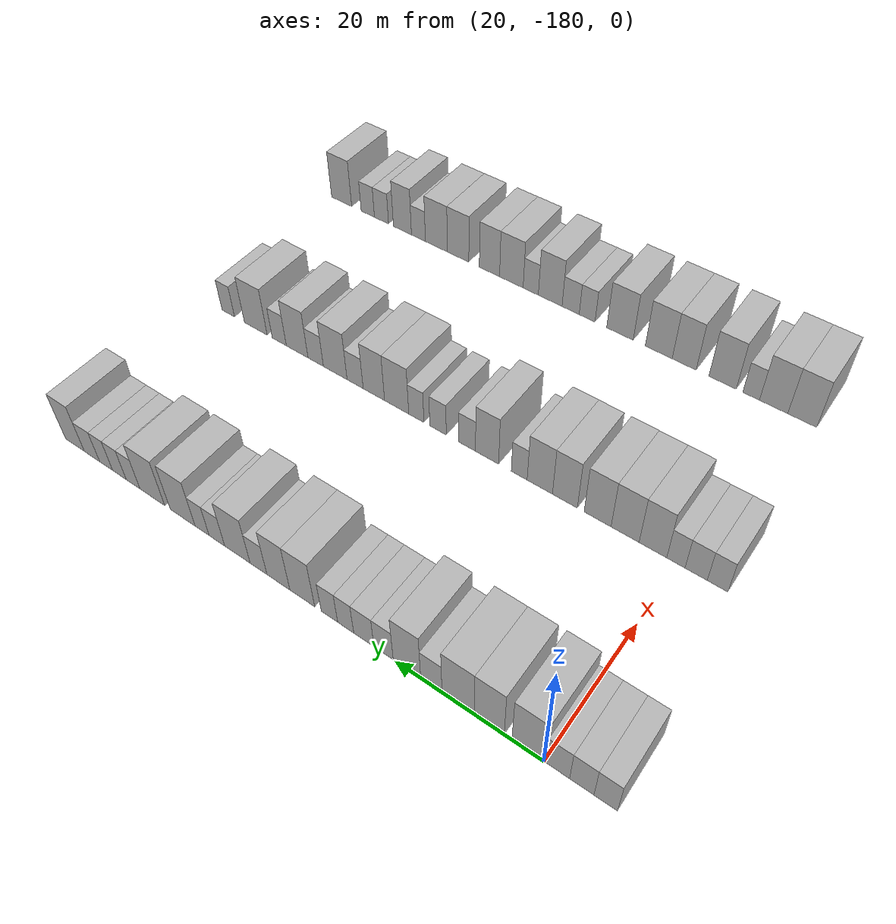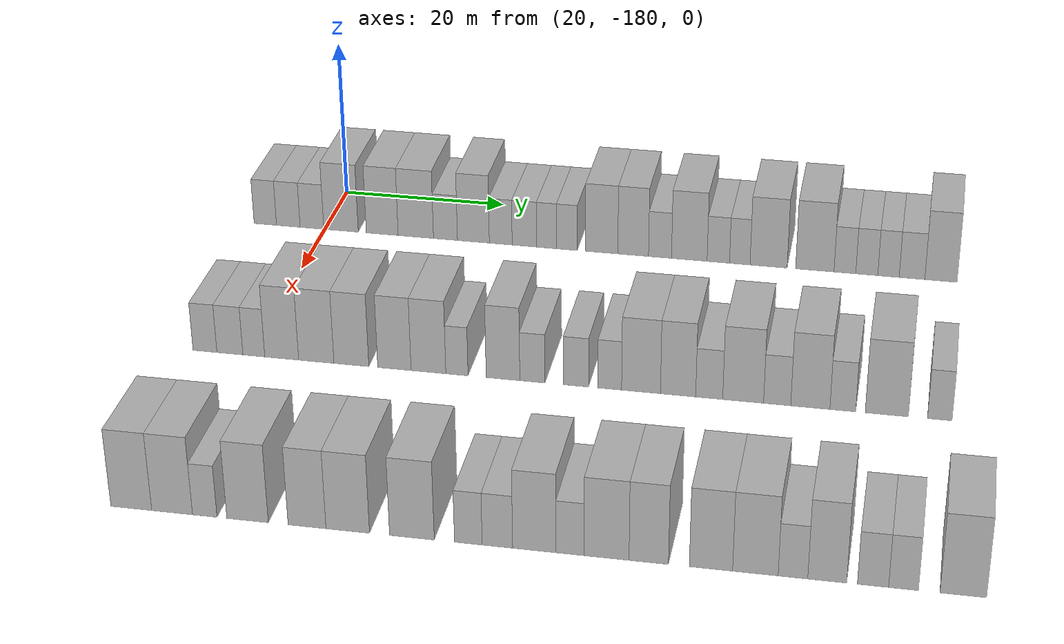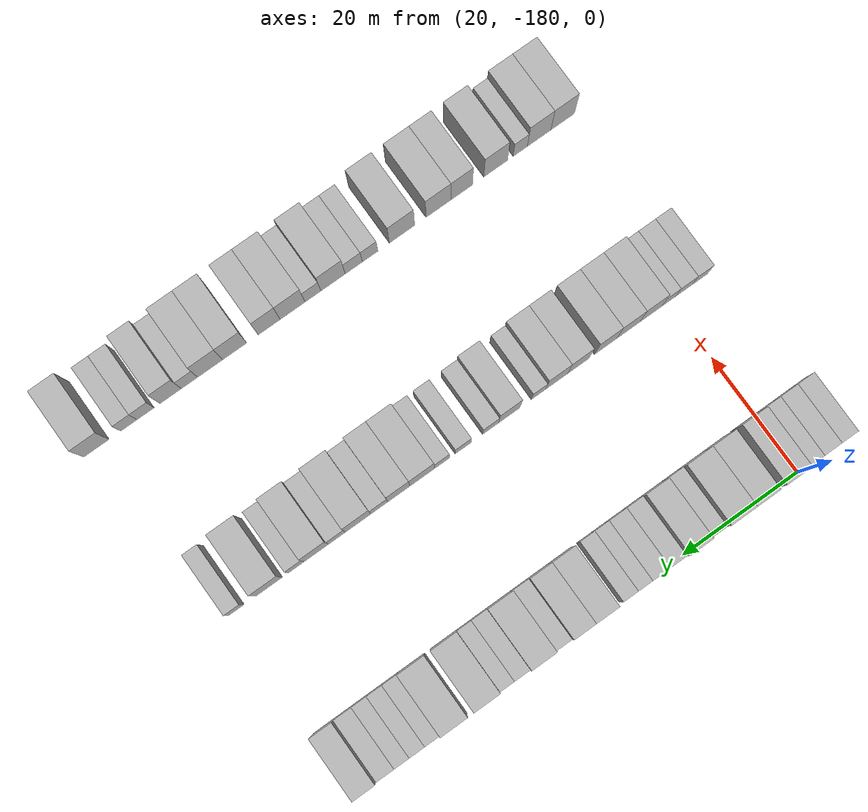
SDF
<sdf version="1.6">
 <world name="default">
  <model name="building_20">
   <static>1</static>
   <pose>25.0000 -187.5165 0 0.000000 0.000000 0.000000</pose>
   <link name="link">
    <pose>0 0 3.00 0 0 0</pose>
    <collision name="collision"><geometry><box><size>10.0000 2.8149 6.0000</size></box></geometry></collision>
    <visual name="visual">
     <cast_shadows>0</cast_shadows>
     <geometry><box><size>10.0000 2.8149 6.0000</size></box></geometry>
     <material>
      <script>
       <uri>model://HANNAS_wall/materials/scripts</uri>
       <uri>model://HANNAS_wall/materials/textures</uri>
       <name>vrc/HANNAS_wall</name>
      </script>
     </material>
    </visual>
   </link>
  </model>
  <model name="building_21">
   <static>1</static>
   <pose>25.0000 -184.6260 0 0.000000 0.000000 0.000000</pose>
   <link name="link">
    <pose>0 0 3.00 0 0 0</pose>
    <collision name="collision"><geometry><box><size>10.0000 2.9661 6.0000</size></box></geometry></collision>
    <visual name="visual">
     <cast_shadows>0</cast_shadows>
     <geometry><box><size>10.0000 2.9661 6.0000</size></box></geometry>
     <material>
      <script>
       <uri>model://HANNAS_wall/materials/scripts</uri>
       <uri>model://HANNAS_wall/materials/textures</uri>
       <name>vrc/HANNAS_wall</name>
      </script>
     </material>
    </visual>
   </link>
  </model>
  <model name="building_22">
   <static>1</static>
   <pose>25.0000 -181.6571 0 0.000000 0.000000 0.000000</pose>
   <link name="link">
    <pose>0 0 3.00 0 0 0</pose>
    <collision name="collision"><geometry><box><size>10.0000 2.9718 6.0000</size></box></geometry></collision>
    <visual name="visual">
     <cast_shadows>0</cast_shadows>
     <geometry><box><size>10.0000 2.9718 6.0000</size></box></geometry>
     <material>
      <script>
       <uri>model://HANNAS_wall/materials/scripts</uri>
       <uri>model://HANNAS_wall/materials/textures</uri>
       <name>vrc/HANNAS_wall</name>
      </script>
     </material>
    </visual>
   </link>
  </model>
  <model name="building_23">
   <static>1</static>
   <pose>25.0000 -178.0207 0 0.000000 0.000000 0.000000</pose>
   <link name="link">
    <pose>0 0 4.50 0 0 0</pose>
    <collision name="collision"><geometry><box><size>10.0000 4.3011 9.0000</size></box></geometry></collision>
    <visual name="visual">
     <cast_shadows>0</cast_shadows>
     <geometry><box><size>10.0000 4.3011 9.0000</size></box></geometry>
     <material>
      <script>
       <uri>model://HANNAS_wall/materials/scripts</uri>
       <uri>model://HANNAS_wall/materials/textures</uri>
       <name>vrc/HANNAS_wall</name>
      </script>
     </material>
    </visual>
   </link>
  </model>
  <model name="building_24">
   <static>1</static>
   <pose>25.0000 -172.8933 0 0.000000 0.000000 0.000000</pose>
   <link name="link">
    <pose>0 0 4.50 0 0 0</pose>
    <collision name="collision"><geometry><box><size>10.0000 3.9537 9.0000</size></box></geometry></collision>
    <visual name="visual">
     <cast_shadows>0</cast_shadows>
     <geometry><box><size>10.0000 3.9537 9.0000</size></box></geometry>
     <material>
      <script>
       <uri>model://HANNAS_wall/materials/scripts</uri>
       <uri>model://HANNAS_wall/materials/textures</uri>
       <name>vrc/HANNAS_wall</name>
      </script>
     </material>
    </visual>
   </link>
  </model>
  <model name="building_25">
   <static>1</static>
   <pose>25.0000 -168.7326 0 0.000000 0.000000 0.000000</pose>
   <link name="link">
    <pose>0 0 4.50 0 0 0</pose>
    <collision name="collision"><geometry><box><size>10.0000 4.3678 9.0000</size></box></geometry></collision>
    <visual name="visual">
     <cast_shadows>0</cast_shadows>
     <geometry><box><size>10.0000 4.3678 9.0000</size></box></geometry>
     <material>
      <script>
       <uri>model://HANNAS_wall/materials/scripts</uri>
       <uri>model://HANNAS_wall/materials/textures</uri>
       <name>vrc/HANNAS_wall</name>
      </script>
     </material>
    </visual>
   </link>
  </model>
  <model name="building_26">
   <static>1</static>
   <pose>25.0000 -165.0727 0 0.000000 0.000000 0.000000</pose>
   <link name="link">
    <pose>0 0 3.00 0 0 0</pose>
    <collision name="collision"><geometry><box><size>10.0000 2.9520 6.0000</size></box></geometry></collision>
    <visual name="visual">
     <cast_shadows>0</cast_shadows>
     <geometry><box><size>10.0000 2.9520 6.0000</size></box></geometry>
     <material>
      <script>
       <uri>model://HANNAS_wall/materials/scripts</uri>
       <uri>model://HANNAS_wall/materials/textures</uri>
       <name>vrc/HANNAS_wall</name>
      </script>
     </material>
    </visual>
   </link>
  </model>
  <model name="building_27">
   <static>1</static>
   <pose>25.0000 -161.6454 0 0.000000 0.000000 0.000000</pose>
   <link name="link">
    <pose>0 0 4.50 0 0 0</pose>
    <collision name="collision"><geometry><box><size>10.0000 3.9026 9.0000</size></box></geometry></collision>
    <visual name="visual">
     <cast_shadows>0</cast_shadows>
     <geometry><box><size>10.0000 3.9026 9.0000</size></box></geometry>
     <material>
      <script>
       <uri>model://HANNAS_wall/materials/scripts</uri>
       <uri>model://HANNAS_wall/materials/textures</uri>
       <name>vrc/HANNAS_wall</name>
      </script>
     </material>
    </visual>
   </link>
  </model>
  <model name="building_28">
   <static>1</static>
   <pose>25.0000 -158.3003 0 0.000000 0.000000 0.000000</pose>
   <link name="link">
    <pose>0 0 3.00 0 0 0</pose>
    <collision name="collision"><geometry><box><size>10.0000 2.7876 6.0000</size></box></geometry></collision>
    <visual name="visual">
     <cast_shadows>0</cast_shadows>
     <geometry><box><size>10.0000 2.7876 6.0000</size></box></geometry>
     <material>
      <script>
       <uri>model://HANNAS_wall/materials/scripts</uri>
       <uri>model://HANNAS_wall/materials/textures</uri>
       <name>vrc/HANNAS_wall</name>
      </script>
     </material>
    </visual>
   </link>
  </model>
  <model name="building_29">
   <static>1</static>
   <pose>25.0000 -155.4149 0 0.000000 0.000000 0.000000</pose>
   <link name="link">
    <pose>0 0 3.00 0 0 0</pose>
    <collision name="collision"><geometry><box><size>10.0000 2.9831 6.0000</size></box></geometry></collision>
    <visual name="visual">
     <cast_shadows>0</cast_shadows>
     <geometry><box><size>10.0000 2.9831 6.0000</size></box></geometry>
     <material>
      <script>
       <uri>model://HANNAS_wall/materials/scripts</uri>
       <uri>model://HANNAS_wall/materials/textures</uri>
       <name>vrc/HANNAS_wall</name>
      </script>
     </material>
    </visual>
   </link>
  </model>
  <model name="building_30">
   <static>1</static>
   <pose>25.0000 -152.7174 0 0.000000 0.000000 0.000000</pose>
   <link name="link">
    <pose>0 0 3.00 0 0 0</pose>
    <collision name="collision"><geometry><box><size>10.0000 2.4119 6.0000</size></box></geometry></collision>
    <visual name="visual">
     <cast_shadows>0</cast_shadows>
     <geometry><box><size>10.0000 2.4119 6.0000</size></box></geometry>
     <material>
      <script>
       <uri>model://HANNAS_wall/materials/scripts</uri>
       <uri>model://HANNAS_wall/materials/textures</uri>
       <name>vrc/HANNAS_wall</name>
      </script>
     </material>
    </visual>
   </link>
  </model>
  <model name="building_31">
   <static>1</static>
   <pose>25.0000 -150.2543 0 0.000000 0.000000 0.000000</pose>
   <link name="link">
    <pose>0 0 3.00 0 0 0</pose>
    <collision name="collision"><geometry><box><size>10.0000 2.5144 6.0000</size></box></geometry></collision>
    <visual name="visual">
     <cast_shadows>0</cast_shadows>
     <geometry><box><size>10.0000 2.5144 6.0000</size></box></geometry>
     <material>
      <script>
       <uri>model://HANNAS_wall/materials/scripts</uri>
       <uri>model://HANNAS_wall/materials/textures</uri>
       <name>vrc/HANNAS_wall</name>
      </script>
     </material>
    </visual>
   </link>
  </model>
  <model name="building_32">
   <static>1</static>
   <pose>25.0000 -146.0555 0 0.000000 0.000000 0.000000</pose>
   <link name="link">
    <pose>0 0 4.50 0 0 0</pose>
    <collision name="collision"><geometry><box><size>10.0000 3.8832 9.0000</size></box></geometry></collision>
    <visual name="visual">
     <cast_shadows>0</cast_shadows>
     <geometry><box><size>10.0000 3.8832 9.0000</size></box></geometry>
     <material>
      <script>
       <uri>model://HANNAS_wall/materials/scripts</uri>
       <uri>model://HANNAS_wall/materials/textures</uri>
       <name>vrc/HANNAS_wall</name>
      </script>
     </material>
    </visual>
   </link>
  </model>
  <model name="building_33">
   <static>1</static>
   <pose>25.0000 -142.2736 0 0.000000 0.000000 0.000000</pose>
   <link name="link">
    <pose>0 0 4.50 0 0 0</pose>
    <collision name="collision"><geometry><box><size>10.0000 3.6805 9.0000</size></box></geometry></collision>
    <visual name="visual">
     <cast_shadows>0</cast_shadows>
     <geometry><box><size>10.0000 3.6805 9.0000</size></box></geometry>
     <material>
      <script>
       <uri>model://HANNAS_wall/materials/scripts</uri>
       <uri>model://HANNAS_wall/materials/textures</uri>
       <name>vrc/HANNAS_wall</name>
      </script>
     </material>
    </visual>
   </link>
  </model>
  <model name="building_34">
   <static>1</static>
   <pose>25.0000 -139.0617 0 0.000000 0.000000 0.000000</pose>
   <link name="link">
    <pose>0 0 3.00 0 0 0</pose>
    <collision name="collision"><geometry><box><size>10.0000 2.7433 6.0000</size></box></geometry></collision>
    <visual name="visual">
     <cast_shadows>0</cast_shadows>
     <geometry><box><size>10.0000 2.7433 6.0000</size></box></geometry>
     <material>
      <script>
       <uri>model://HANNAS_wall/materials/scripts</uri>
       <uri>model://HANNAS_wall/materials/textures</uri>
       <name>vrc/HANNAS_wall</name>
      </script>
     </material>
    </visual>
   </link>
  </model>
  <model name="building_35">
   <static>1</static>
   <pose>25.0000 -135.5713 0 0.000000 0.000000 0.000000</pose>
   <link name="link">
    <pose>0 0 4.50 0 0 0</pose>
    <collision name="collision"><geometry><box><size>10.0000 4.2375 9.0000</size></box></geometry></collision>
    <visual name="visual">
     <cast_shadows>0</cast_shadows>
     <geometry><box><size>10.0000 4.2375 9.0000</size></box></geometry>
     <material>
      <script>
       <uri>model://HANNAS_wall/materials/scripts</uri>
       <uri>model://HANNAS_wall/materials/textures</uri>
       <name>vrc/HANNAS_wall</name>
      </script>
     </material>
    </visual>
   </link>
  </model>
  <model name="building_36">
   <static>1</static>
   <pose>25.0000 -132.1241 0 0.000000 0.000000 0.000000</pose>
   <link name="link">
    <pose>0 0 3.00 0 0 0</pose>
    <collision name="collision"><geometry><box><size>10.0000 2.6570 6.0000</size></box></geometry></collision>
    <visual name="visual">
     <cast_shadows>0</cast_shadows>
     <geometry><box><size>10.0000 2.6570 6.0000</size></box></geometry>
     <material>
      <script>
       <uri>model://HANNAS_wall/materials/scripts</uri>
       <uri>model://HANNAS_wall/materials/textures</uri>
       <name>vrc/HANNAS_wall</name>
      </script>
     </material>
    </visual>
   </link>
  </model>
  <model name="building_37">
   <static>1</static>
   <pose>25.0000 -129.5836 0 0.000000 0.000000 0.000000</pose>
   <link name="link">
    <pose>0 0 3.00 0 0 0</pose>
    <collision name="collision"><geometry><box><size>10.0000 2.4239 6.0000</size></box></geometry></collision>
    <visual name="visual">
     <cast_shadows>0</cast_shadows>
     <geometry><box><size>10.0000 2.4239 6.0000</size></box></geometry>
     <material>
      <script>
       <uri>model://HANNAS_wall/materials/scripts</uri>
       <uri>model://HANNAS_wall/materials/textures</uri>
       <name>vrc/HANNAS_wall</name>
      </script>
     </material>
    </visual>
   </link>
  </model>
  <model name="building_38">
   <static>1</static>
   <pose>25.0000 -126.1847 0 0.000000 0.000000 0.000000</pose>
   <link name="link">
    <pose>0 0 4.50 0 0 0</pose>
    <collision name="collision"><geometry><box><size>10.0000 4.3740 9.0000</size></box></geometry></collision>
    <visual name="visual">
     <cast_shadows>0</cast_shadows>
     <geometry><box><size>10.0000 4.3740 9.0000</size></box></geometry>
     <material>
      <script>
       <uri>model://HANNAS_wall/materials/scripts</uri>
       <uri>model://HANNAS_wall/materials/textures</uri>
       <name>vrc/HANNAS_wall</name>
      </script>
     </material>
    </visual>
   </link>
  </model>
  <model name="building_39">
   <static>1</static>
   <pose>25.0000 -120.7528 0 0.000000 0.000000 0.000000</pose>
   <link name="link">
    <pose>0 0 4.50 0 0 0</pose>
    <collision name="collision"><geometry><box><size>10.0000 4.4898 9.0000</size></box></geometry></collision>
    <visual name="visual">
     <cast_shadows>0</cast_shadows>
     <geometry><box><size>10.0000 4.4898 9.0000</size></box></geometry>
     <material>
      <script>
       <uri>model://HANNAS_wall/materials/scripts</uri>
       <uri>model://HANNAS_wall/materials/textures</uri>
       <name>vrc/HANNAS_wall</name>
      </script>
     </material>
    </visual>
   </link>
  </model>
  <model name="building_40">
   <static>1</static>
   <pose>25.0000 -117.2379 0 0.000000 0.000000 0.000000</pose>
   <link name="link">
    <pose>0 0 3.00 0 0 0</pose>
    <collision name="collision"><geometry><box><size>10.0000 2.5400 6.0000</size></box></geometry></collision>
    <visual name="visual">
     <cast_shadows>0</cast_shadows>
     <geometry><box><size>10.0000 2.5400 6.0000</size></box></geometry>
     <material>
      <script>
       <uri>model://HANNAS_wall/materials/scripts</uri>
       <uri>model://HANNAS_wall/materials/textures</uri>
       <name>vrc/HANNAS_wall</name>
      </script>
     </material>
    </visual>
   </link>
  </model>
  <model name="building_41">
   <static>1</static>
   <pose>25.0000 -114.6901 0 0.000000 0.000000 0.000000</pose>
   <link name="link">
    <pose>0 0 3.00 0 0 0</pose>
    <collision name="collision"><geometry><box><size>10.0000 2.5557 6.0000</size></box></geometry></collision>
    <visual name="visual">
     <cast_shadows>0</cast_shadows>
     <geometry><box><size>10.0000 2.5557 6.0000</size></box></geometry>
     <material>
      <script>
       <uri>model://HANNAS_wall/materials/scripts</uri>
       <uri>model://HANNAS_wall/materials/textures</uri>
       <name>vrc/HANNAS_wall</name>
      </script>
     </material>
    </visual>
   </link>
  </model>
  <model name="building_42">
   <static>1</static>
   <pose>25.0000 -112.1726 0 0.000000 0.000000 0.000000</pose>
   <link name="link">
    <pose>0 0 3.00 0 0 0</pose>
    <collision name="collision"><geometry><box><size>10.0000 2.4793 6.0000</size></box></geometry></collision>
    <visual name="visual">
     <cast_shadows>0</cast_shadows>
     <geometry><box><size>10.0000 2.4793 6.0000</size></box></geometry>
     <material>
      <script>
       <uri>model://HANNAS_wall/materials/scripts</uri>
       <uri>model://HANNAS_wall/materials/textures</uri>
       <name>vrc/HANNAS_wall</name>
      </script>
     </material>
    </visual>
   </link>
  </model>
  <model name="building_43">
   <static>1</static>
   <pose>25.0000 -109.4523 0 0.000000 0.000000 0.000000</pose>
   <link name="link">
    <pose>0 0 3.00 0 0 0</pose>
    <collision name="collision"><geometry><box><size>10.0000 2.9611 6.0000</size></box></geometry></collision>
    <visual name="visual">
     <cast_shadows>0</cast_shadows>
     <geometry><box><size>10.0000 2.9611 6.0000</size></box></geometry>
     <material>
      <script>
       <uri>model://HANNAS_wall/materials/scripts</uri>
       <uri>model://HANNAS_wall/materials/textures</uri>
       <name>vrc/HANNAS_wall</name>
      </script>
     </material>
    </visual>
   </link>
  </model>
  <model name="building_44">
   <static>1</static>
   <pose>25.0000 -106.1168 0 0.000000 0.000000 0.000000</pose>
   <link name="link">
    <pose>0 0 4.50 0 0 0</pose>
    <collision name="collision"><geometry><box><size>10.0000 3.7099 9.0000</size></box></geometry></collision>
    <visual name="visual">
     <cast_shadows>0</cast_shadows>
     <geometry><box><size>10.0000 3.7099 9.0000</size></box></geometry>
     <material>
      <script>
       <uri>model://HANNAS_wall/materials/scripts</uri>
       <uri>model://HANNAS_wall/materials/textures</uri>
       <name>vrc/HANNAS_wall</name>
      </script>
     </material>
    </visual>
   </link>
  </model>
  <model name="building_160">
   <static>1</static>
   <pose>55.0000 -185.3329 0 0.000000 0.000000 0.000000</pose>
   <link name="link">
    <pose>0 0 3.00 0 0 0</pose>
    <collision name="collision"><geometry><box><size>10.0000 2.7298 6.0000</size></box></geometry></collision>
    <visual name="visual">
     <cast_shadows>0</cast_shadows>
     <geometry><box><size>10.0000 2.7298 6.0000</size></box></geometry>
     <material>
      <script>
       <uri>model://HANNAS_wall/materials/scripts</uri>
       <uri>model://HANNAS_wall/materials/textures</uri>
       <name>vrc/HANNAS_wall</name>
      </script>
     </material>
    </visual>
   </link>
  </model>
  <model name="building_161">
   <static>1</static>
   <pose>55.0000 -182.4841 0 0.000000 0.000000 0.000000</pose>
   <link name="link">
    <pose>0 0 3.00 0 0 0</pose>
    <collision name="collision"><geometry><box><size>10.0000 2.9677 6.0000</size></box></geometry></collision>
    <visual name="visual">
     <cast_shadows>0</cast_shadows>
     <geometry><box><size>10.0000 2.9677 6.0000</size></box></geometry>
     <material>
      <script>
       <uri>model://HANNAS_wall/materials/scripts</uri>
       <uri>model://HANNAS_wall/materials/textures</uri>
       <name>vrc/HANNAS_wall</name>
      </script>
     </material>
    </visual>
   </link>
  </model>
  <model name="building_162">
   <static>1</static>
   <pose>55.0000 -179.7537 0 0.000000 0.000000 0.000000</pose>
   <link name="link">
    <pose>0 0 3.00 0 0 0</pose>
    <collision name="collision"><geometry><box><size>10.0000 2.4931 6.0000</size></box></geometry></collision>
    <visual name="visual">
     <cast_shadows>0</cast_shadows>
     <geometry><box><size>10.0000 2.4931 6.0000</size></box></geometry>
     <material>
      <script>
       <uri>model://HANNAS_wall/materials/scripts</uri>
       <uri>model://HANNAS_wall/materials/textures</uri>
       <name>vrc/HANNAS_wall</name>
      </script>
     </material>
    </visual>
   </link>
  </model>
  <model name="building_163">
   <static>1</static>
   <pose>55.0000 -176.5890 0 0.000000 0.000000 0.000000</pose>
   <link name="link">
    <pose>0 0 4.50 0 0 0</pose>
    <collision name="collision"><geometry><box><size>10.0000 3.8361 9.0000</size></box></geometry></collision>
    <visual name="visual">
     <cast_shadows>0</cast_shadows>
     <geometry><box><size>10.0000 3.8361 9.0000</size></box></geometry>
     <material>
      <script>
       <uri>model://HANNAS_wall/materials/scripts</uri>
       <uri>model://HANNAS_wall/materials/textures</uri>
       <name>vrc/HANNAS_wall</name>
      </script>
     </material>
    </visual>
   </link>
  </model>
  <model name="building_164">
   <static>1</static>
   <pose>55.0000 -172.6788 0 0.000000 0.000000 0.000000</pose>
   <link name="link">
    <pose>0 0 4.50 0 0 0</pose>
    <collision name="collision"><geometry><box><size>10.0000 3.9845 9.0000</size></box></geometry></collision>
    <visual name="visual">
     <cast_shadows>0</cast_shadows>
     <geometry><box><size>10.0000 3.9845 9.0000</size></box></geometry>
     <material>
      <script>
       <uri>model://HANNAS_wall/materials/scripts</uri>
       <uri>model://HANNAS_wall/materials/textures</uri>
       <name>vrc/HANNAS_wall</name>
      </script>
     </material>
    </visual>
   </link>
  </model>
  <model name="building_165">
   <static>1</static>
   <pose>55.0000 -168.7278 0 0.000000 0.000000 0.000000</pose>
   <link name="link">
    <pose>0 0 4.50 0 0 0</pose>
    <collision name="collision"><geometry><box><size>10.0000 3.9175 9.0000</size></box></geometry></collision>
    <visual name="visual">
     <cast_shadows>0</cast_shadows>
     <geometry><box><size>10.0000 3.9175 9.0000</size></box></geometry>
     <material>
      <script>
       <uri>model://HANNAS_wall/materials/scripts</uri>
       <uri>model://HANNAS_wall/materials/textures</uri>
       <name>vrc/HANNAS_wall</name>
      </script>
     </material>
    </visual>
   </link>
  </model>
  <model name="building_166">
   <static>1</static>
   <pose>55.0000 -163.9092 0 0.000000 0.000000 0.000000</pose>
   <link name="link">
    <pose>0 0 4.50 0 0 0</pose>
    <collision name="collision"><geometry><box><size>10.0000 3.7197 9.0000</size></box></geometry></collision>
    <visual name="visual">
     <cast_shadows>0</cast_shadows>
     <geometry><box><size>10.0000 3.7197 9.0000</size></box></geometry>
     <material>
      <script>
       <uri>model://HANNAS_wall/materials/scripts</uri>
       <uri>model://HANNAS_wall/materials/textures</uri>
       <name>vrc/HANNAS_wall</name>
      </script>
     </material>
    </visual>
   </link>
  </model>
  <model name="building_167">
   <static>1</static>
   <pose>55.0000 -160.1171 0 0.000000 0.000000 0.000000</pose>
   <link name="link">
    <pose>0 0 4.50 0 0 0</pose>
    <collision name="collision"><geometry><box><size>10.0000 3.8644 9.0000</size></box></geometry></collision>
    <visual name="visual">
     <cast_shadows>0</cast_shadows>
     <geometry><box><size>10.0000 3.8644 9.0000</size></box></geometry>
     <material>
      <script>
       <uri>model://HANNAS_wall/materials/scripts</uri>
       <uri>model://HANNAS_wall/materials/textures</uri>
       <name>vrc/HANNAS_wall</name>
      </script>
     </material>
    </visual>
   </link>
  </model>
  <model name="building_168">
   <static>1</static>
   <pose>55.0000 -156.9563 0 0.000000 0.000000 0.000000</pose>
   <link name="link">
    <pose>0 0 3.00 0 0 0</pose>
    <collision name="collision"><geometry><box><size>10.0000 2.4572 6.0000</size></box></geometry></collision>
    <visual name="visual">
     <cast_shadows>0</cast_shadows>
     <geometry><box><size>10.0000 2.4572 6.0000</size></box></geometry>
     <material>
      <script>
       <uri>model://HANNAS_wall/materials/scripts</uri>
       <uri>model://HANNAS_wall/materials/textures</uri>
       <name>vrc/HANNAS_wall</name>
      </script>
     </material>
    </visual>
   </link>
  </model>
  <model name="building_169">
   <static>1</static>
   <pose>55.0000 -151.8775 0 0.000000 0.000000 0.000000</pose>
   <link name="link">
    <pose>0 0 4.50 0 0 0</pose>
    <collision name="collision"><geometry><box><size>10.0000 3.7004 9.0000</size></box></geometry></collision>
    <visual name="visual">
     <cast_shadows>0</cast_shadows>
     <geometry><box><size>10.0000 3.7004 9.0000</size></box></geometry>
     <material>
      <script>
       <uri>model://HANNAS_wall/materials/scripts</uri>
       <uri>model://HANNAS_wall/materials/textures</uri>
       <name>vrc/HANNAS_wall</name>
      </script>
     </material>
    </visual>
   </link>
  </model>
  <model name="building_170">
   <static>1</static>
   <pose>55.0000 -148.6454 0 0.000000 0.000000 0.000000</pose>
   <link name="link">
    <pose>0 0 3.00 0 0 0</pose>
    <collision name="collision"><geometry><box><size>10.0000 2.7639 6.0000</size></box></geometry></collision>
    <visual name="visual">
     <cast_shadows>0</cast_shadows>
     <geometry><box><size>10.0000 2.7639 6.0000</size></box></geometry>
     <material>
      <script>
       <uri>model://HANNAS_wall/materials/scripts</uri>
       <uri>model://HANNAS_wall/materials/textures</uri>
       <name>vrc/HANNAS_wall</name>
      </script>
     </material>
    </visual>
   </link>
  </model>
  <model name="building_171">
   <static>1</static>
   <pose>55.0000 -143.8919 0 0.000000 0.000000 0.000000</pose>
   <link name="link">
    <pose>0 0 3.00 0 0 0</pose>
    <collision name="collision"><geometry><box><size>10.0000 2.7431 6.0000</size></box></geometry></collision>
    <visual name="visual">
     <cast_shadows>0</cast_shadows>
     <geometry><box><size>10.0000 2.7431 6.0000</size></box></geometry>
     <material>
      <script>
       <uri>model://HANNAS_wall/materials/scripts</uri>
       <uri>model://HANNAS_wall/materials/textures</uri>
       <name>vrc/HANNAS_wall</name>
      </script>
     </material>
    </visual>
   </link>
  </model>
  <model name="building_172">
   <static>1</static>
   <pose>55.0000 -140.2297 0 0.000000 0.000000 0.000000</pose>
   <link name="link">
    <pose>0 0 3.00 0 0 0</pose>
    <collision name="collision"><geometry><box><size>10.0000 2.5813 6.0000</size></box></geometry></collision>
    <visual name="visual">
     <cast_shadows>0</cast_shadows>
     <geometry><box><size>10.0000 2.5813 6.0000</size></box></geometry>
     <material>
      <script>
       <uri>model://HANNAS_wall/materials/scripts</uri>
       <uri>model://HANNAS_wall/materials/textures</uri>
       <name>vrc/HANNAS_wall</name>
      </script>
     </material>
    </visual>
   </link>
  </model>
  <model name="building_173">
   <static>1</static>
   <pose>55.0000 -136.8438 0 0.000000 0.000000 0.000000</pose>
   <link name="link">
    <pose>0 0 4.50 0 0 0</pose>
    <collision name="collision"><geometry><box><size>10.0000 4.1904 9.0000</size></box></geometry></collision>
    <visual name="visual">
     <cast_shadows>0</cast_shadows>
     <geometry><box><size>10.0000 4.1904 9.0000</size></box></geometry>
     <material>
      <script>
       <uri>model://HANNAS_wall/materials/scripts</uri>
       <uri>model://HANNAS_wall/materials/textures</uri>
       <name>vrc/HANNAS_wall</name>
      </script>
     </material>
    </visual>
   </link>
  </model>
  <model name="building_174">
   <static>1</static>
   <pose>55.0000 -132.8547 0 0.000000 0.000000 0.000000</pose>
   <link name="link">
    <pose>0 0 4.50 0 0 0</pose>
    <collision name="collision"><geometry><box><size>10.0000 3.7879 9.0000</size></box></geometry></collision>
    <visual name="visual">
     <cast_shadows>0</cast_shadows>
     <geometry><box><size>10.0000 3.7879 9.0000</size></box></geometry>
     <material>
      <script>
       <uri>model://HANNAS_wall/materials/scripts</uri>
       <uri>model://HANNAS_wall/materials/textures</uri>
       <name>vrc/HANNAS_wall</name>
      </script>
     </material>
    </visual>
   </link>
  </model>
  <model name="building_175">
   <static>1</static>
   <pose>55.0000 -129.5152 0 0.000000 0.000000 0.000000</pose>
   <link name="link">
    <pose>0 0 3.00 0 0 0</pose>
    <collision name="collision"><geometry><box><size>10.0000 2.8910 6.0000</size></box></geometry></collision>
    <visual name="visual">
     <cast_shadows>0</cast_shadows>
     <geometry><box><size>10.0000 2.8910 6.0000</size></box></geometry>
     <material>
      <script>
       <uri>model://HANNAS_wall/materials/scripts</uri>
       <uri>model://HANNAS_wall/materials/textures</uri>
       <name>vrc/HANNAS_wall</name>
      </script>
     </material>
    </visual>
   </link>
  </model>
  <model name="building_176">
   <static>1</static>
   <pose>55.0000 -125.8954 0 0.000000 0.000000 0.000000</pose>
   <link name="link">
    <pose>0 0 4.50 0 0 0</pose>
    <collision name="collision"><geometry><box><size>10.0000 4.3487 9.0000</size></box></geometry></collision>
    <visual name="visual">
     <cast_shadows>0</cast_shadows>
     <geometry><box><size>10.0000 4.3487 9.0000</size></box></geometry>
     <material>
      <script>
       <uri>model://HANNAS_wall/materials/scripts</uri>
       <uri>model://HANNAS_wall/materials/textures</uri>
       <name>vrc/HANNAS_wall</name>
      </script>
     </material>
    </visual>
   </link>
  </model>
  <model name="building_177">
   <static>1</static>
   <pose>55.0000 -122.2835 0 0.000000 0.000000 0.000000</pose>
   <link name="link">
    <pose>0 0 3.00 0 0 0</pose>
    <collision name="collision"><geometry><box><size>10.0000 2.8752 6.0000</size></box></geometry></collision>
    <visual name="visual">
     <cast_shadows>0</cast_shadows>
     <geometry><box><size>10.0000 2.8752 6.0000</size></box></geometry>
     <material>
      <script>
       <uri>model://HANNAS_wall/materials/scripts</uri>
       <uri>model://HANNAS_wall/materials/textures</uri>
       <name>vrc/HANNAS_wall</name>
      </script>
     </material>
    </visual>
   </link>
  </model>
  <model name="building_178">
   <static>1</static>
   <pose>55.0000 -118.7771 0 0.000000 0.000000 0.000000</pose>
   <link name="link">
    <pose>0 0 4.50 0 0 0</pose>
    <collision name="collision"><geometry><box><size>10.0000 4.1375 9.0000</size></box></geometry></collision>
    <visual name="visual">
     <cast_shadows>0</cast_shadows>
     <geometry><box><size>10.0000 4.1375 9.0000</size></box></geometry>
     <material>
      <script>
       <uri>model://HANNAS_wall/materials/scripts</uri>
       <uri>model://HANNAS_wall/materials/textures</uri>
       <name>vrc/HANNAS_wall</name>
      </script>
     </material>
    </visual>
   </link>
  </model>
  <model name="building_179">
   <static>1</static>
   <pose>55.0000 -115.3533 0 0.000000 0.000000 0.000000</pose>
   <link name="link">
    <pose>0 0 3.00 0 0 0</pose>
    <collision name="collision"><geometry><box><size>10.0000 2.7101 6.0000</size></box></geometry></collision>
    <visual name="visual">
     <cast_shadows>0</cast_shadows>
     <geometry><box><size>10.0000 2.7101 6.0000</size></box></geometry>
     <material>
      <script>
       <uri>model://HANNAS_wall/materials/scripts</uri>
       <uri>model://HANNAS_wall/materials/textures</uri>
       <name>vrc/HANNAS_wall</name>
      </script>
     </material>
    </visual>
   </link>
  </model>
  <model name="building_180">
   <static>1</static>
   <pose>55.0000 -110.7484 0 0.000000 0.000000 0.000000</pose>
   <link name="link">
    <pose>0 0 4.50 0 0 0</pose>
    <collision name="collision"><geometry><box><size>10.0000 4.4997 9.0000</size></box></geometry></collision>
    <visual name="visual">
     <cast_shadows>0</cast_shadows>
     <geometry><box><size>10.0000 4.4997 9.0000</size></box></geometry>
     <material>
      <script>
       <uri>model://HANNAS_wall/materials/scripts</uri>
       <uri>model://HANNAS_wall/materials/textures</uri>
       <name>vrc/HANNAS_wall</name>
      </script>
     </material>
    </visual>
   </link>
  </model>
  <model name="building_181">
   <static>1</static>
   <pose>55.0000 -105.2302 0 0.000000 0.000000 0.000000</pose>
   <link name="link">
    <pose>0 0 3.00 0 0 0</pose>
    <collision name="collision"><geometry><box><size>10.0000 2.5369 6.0000</size></box></geometry></collision>
    <visual name="visual">
     <cast_shadows>0</cast_shadows>
     <geometry><box><size>10.0000 2.5369 6.0000</size></box></geometry>
     <material>
      <script>
       <uri>model://HANNAS_wall/materials/scripts</uri>
       <uri>model://HANNAS_wall/materials/textures</uri>
       <name>vrc/HANNAS_wall</name>
      </script>
     </material>
    </visual>
   </link>
  </model>
  <model name="building_298">
   <static>1</static>
   <pose>85.0000 -183.0597 0 0.000000 0.000000 0.000000</pose>
   <link name="link">
    <pose>0 0 4.50 0 0 0</pose>
    <collision name="collision"><geometry><box><size>10.0000 4.1993 9.0000</size></box></geometry></collision>
    <visual name="visual">
     <cast_shadows>0</cast_shadows>
     <geometry><box><size>10.0000 4.1993 9.0000</size></box></geometry>
     <material>
      <script>
       <uri>model://HANNAS_wall/materials/scripts</uri>
       <uri>model://HANNAS_wall/materials/textures</uri>
       <name>vrc/HANNAS_wall</name>
      </script>
     </material>
    </visual>
   </link>
  </model>
  <model name="building_299">
   <static>1</static>
   <pose>85.0000 -178.8681 0 0.000000 0.000000 0.000000</pose>
   <link name="link">
    <pose>0 0 4.50 0 0 0</pose>
    <collision name="collision"><geometry><box><size>10.0000 4.1840 9.0000</size></box></geometry></collision>
    <visual name="visual">
     <cast_shadows>0</cast_shadows>
     <geometry><box><size>10.0000 4.1840 9.0000</size></box></geometry>
     <material>
      <script>
       <uri>model://HANNAS_wall/materials/scripts</uri>
       <uri>model://HANNAS_wall/materials/textures</uri>
       <name>vrc/HANNAS_wall</name>
      </script>
     </material>
    </visual>
   </link>
  </model>
  <model name="building_300">
   <static>1</static>
   <pose>85.0000 -175.5257 0 0.000000 0.000000 0.000000</pose>
   <link name="link">
    <pose>0 0 3.00 0 0 0</pose>
    <collision name="collision"><geometry><box><size>10.0000 2.5008 6.0000</size></box></geometry></collision>
    <visual name="visual">
     <cast_shadows>0</cast_shadows>
     <geometry><box><size>10.0000 2.5008 6.0000</size></box></geometry>
     <material>
      <script>
       <uri>model://HANNAS_wall/materials/scripts</uri>
       <uri>model://HANNAS_wall/materials/textures</uri>
       <name>vrc/HANNAS_wall</name>
      </script>
     </material>
    </visual>
   </link>
  </model>
  <model name="building_301">
   <static>1</static>
   <pose>85.0000 -171.1748 0 0.000000 0.000000 0.000000</pose>
   <link name="link">
    <pose>0 0 4.50 0 0 0</pose>
    <collision name="collision"><geometry><box><size>10.0000 4.2010 9.0000</size></box></geometry></collision>
    <visual name="visual">
     <cast_shadows>0</cast_shadows>
     <geometry><box><size>10.0000 4.2010 9.0000</size></box></geometry>
     <material>
      <script>
       <uri>model://HANNAS_wall/materials/scripts</uri>
       <uri>model://HANNAS_wall/materials/textures</uri>
       <name>vrc/HANNAS_wall</name>
      </script>
     </material>
    </visual>
   </link>
  </model>
  <model name="building_302">
   <static>1</static>
   <pose>85.0000 -165.1712 0 0.000000 0.000000 0.000000</pose>
   <link name="link">
    <pose>0 0 4.50 0 0 0</pose>
    <collision name="collision"><geometry><box><size>10.0000 3.8062 9.0000</size></box></geometry></collision>
    <visual name="visual">
     <cast_shadows>0</cast_shadows>
     <geometry><box><size>10.0000 3.8062 9.0000</size></box></geometry>
     <material>
      <script>
       <uri>model://HANNAS_wall/materials/scripts</uri>
       <uri>model://HANNAS_wall/materials/textures</uri>
       <name>vrc/HANNAS_wall</name>
      </script>
     </material>
    </visual>
   </link>
  </model>
  <model name="building_303">
   <static>1</static>
   <pose>85.0000 -161.0914 0 0.000000 0.000000 0.000000</pose>
   <link name="link">
    <pose>0 0 4.50 0 0 0</pose>
    <collision name="collision"><geometry><box><size>10.0000 4.3534 9.0000</size></box></geometry></collision>
    <visual name="visual">
     <cast_shadows>0</cast_shadows>
     <geometry><box><size>10.0000 4.3534 9.0000</size></box></geometry>
     <material>
      <script>
       <uri>model://HANNAS_wall/materials/scripts</uri>
       <uri>model://HANNAS_wall/materials/textures</uri>
       <name>vrc/HANNAS_wall</name>
      </script>
     </material>
    </visual>
   </link>
  </model>
  <model name="building_304">
   <static>1</static>
   <pose>85.0000 -154.7003 0 0.000000 0.000000 0.000000</pose>
   <link name="link">
    <pose>0 0 4.50 0 0 0</pose>
    <collision name="collision"><geometry><box><size>10.0000 4.4288 9.0000</size></box></geometry></collision>
    <visual name="visual">
     <cast_shadows>0</cast_shadows>
     <geometry><box><size>10.0000 4.4288 9.0000</size></box></geometry>
     <material>
      <script>
       <uri>model://HANNAS_wall/materials/scripts</uri>
       <uri>model://HANNAS_wall/materials/textures</uri>
       <name>vrc/HANNAS_wall</name>
      </script>
     </material>
    </visual>
   </link>
  </model>
  <model name="building_305">
   <static>1</static>
   <pose>85.0000 -149.1283 0 0.000000 0.000000 0.000000</pose>
   <link name="link">
    <pose>0 0 3.00 0 0 0</pose>
    <collision name="collision"><geometry><box><size>10.0000 2.7152 6.0000</size></box></geometry></collision>
    <visual name="visual">
     <cast_shadows>0</cast_shadows>
     <geometry><box><size>10.0000 2.7152 6.0000</size></box></geometry>
     <material>
      <script>
       <uri>model://HANNAS_wall/materials/scripts</uri>
       <uri>model://HANNAS_wall/materials/textures</uri>
       <name>vrc/HANNAS_wall</name>
      </script>
     </material>
    </visual>
   </link>
  </model>
  <model name="building_306">
   <static>1</static>
   <pose>85.0000 -146.2766 0 0.000000 0.000000 0.000000</pose>
   <link name="link">
    <pose>0 0 3.00 0 0 0</pose>
    <collision name="collision"><geometry><box><size>10.0000 2.9882 6.0000</size></box></geometry></collision>
    <visual name="visual">
     <cast_shadows>0</cast_shadows>
     <geometry><box><size>10.0000 2.9882 6.0000</size></box></geometry>
     <material>
      <script>
       <uri>model://HANNAS_wall/materials/scripts</uri>
       <uri>model://HANNAS_wall/materials/textures</uri>
       <name>vrc/HANNAS_wall</name>
      </script>
     </material>
    </visual>
   </link>
  </model>
  <model name="building_307">
   <static>1</static>
   <pose>85.0000 -142.6722 0 0.000000 0.000000 0.000000</pose>
   <link name="link">
    <pose>0 0 4.50 0 0 0</pose>
    <collision name="collision"><geometry><box><size>10.0000 4.2205 9.0000</size></box></geometry></collision>
    <visual name="visual">
     <cast_shadows>0</cast_shadows>
     <geometry><box><size>10.0000 4.2205 9.0000</size></box></geometry>
     <material>
      <script>
       <uri>model://HANNAS_wall/materials/scripts</uri>
       <uri>model://HANNAS_wall/materials/textures</uri>
       <name>vrc/HANNAS_wall</name>
      </script>
     </material>
    </visual>
   </link>
  </model>
  <model name="building_308">
   <static>1</static>
   <pose>85.0000 -139.1941 0 0.000000 0.000000 0.000000</pose>
   <link name="link">
    <pose>0 0 3.00 0 0 0</pose>
    <collision name="collision"><geometry><box><size>10.0000 2.7357 6.0000</size></box></geometry></collision>
    <visual name="visual">
     <cast_shadows>0</cast_shadows>
     <geometry><box><size>10.0000 2.7357 6.0000</size></box></geometry>
     <material>
      <script>
       <uri>model://HANNAS_wall/materials/scripts</uri>
       <uri>model://HANNAS_wall/materials/textures</uri>
       <name>vrc/HANNAS_wall</name>
      </script>
     </material>
    </visual>
   </link>
  </model>
  <model name="building_309">
   <static>1</static>
   <pose>85.0000 -135.6628 0 0.000000 0.000000 0.000000</pose>
   <link name="link">
    <pose>0 0 4.50 0 0 0</pose>
    <collision name="collision"><geometry><box><size>10.0000 4.3270 9.0000</size></box></geometry></collision>
    <visual name="visual">
     <cast_shadows>0</cast_shadows>
     <geometry><box><size>10.0000 4.3270 9.0000</size></box></geometry>
     <material>
      <script>
       <uri>model://HANNAS_wall/materials/scripts</uri>
       <uri>model://HANNAS_wall/materials/textures</uri>
       <name>vrc/HANNAS_wall</name>
      </script>
     </material>
    </visual>
   </link>
  </model>
  <model name="building_310">
   <static>1</static>
   <pose>85.0000 -131.6081 0 0.000000 0.000000 0.000000</pose>
   <link name="link">
    <pose>0 0 4.50 0 0 0</pose>
    <collision name="collision"><geometry><box><size>10.0000 3.7823 9.0000</size></box></geometry></collision>
    <visual name="visual">
     <cast_shadows>0</cast_shadows>
     <geometry><box><size>10.0000 3.7823 9.0000</size></box></geometry>
     <material>
      <script>
       <uri>model://HANNAS_wall/materials/scripts</uri>
       <uri>model://HANNAS_wall/materials/textures</uri>
       <name>vrc/HANNAS_wall</name>
      </script>
     </material>
    </visual>
   </link>
  </model>
  <model name="building_311">
   <static>1</static>
   <pose>85.0000 -125.6606 0 0.000000 0.000000 0.000000</pose>
   <link name="link">
    <pose>0 0 4.50 0 0 0</pose>
    <collision name="collision"><geometry><box><size>10.0000 4.1128 9.0000</size></box></geometry></collision>
    <visual name="visual">
     <cast_shadows>0</cast_shadows>
     <geometry><box><size>10.0000 4.1128 9.0000</size></box></geometry>
     <material>
      <script>
       <uri>model://HANNAS_wall/materials/scripts</uri>
       <uri>model://HANNAS_wall/materials/textures</uri>
       <name>vrc/HANNAS_wall</name>
      </script>
     </material>
    </visual>
   </link>
  </model>
  <model name="building_312">
   <static>1</static>
   <pose>85.0000 -121.4495 0 0.000000 0.000000 0.000000</pose>
   <link name="link">
    <pose>0 0 4.50 0 0 0</pose>
    <collision name="collision"><geometry><box><size>10.0000 4.3093 9.0000</size></box></geometry></collision>
    <visual name="visual">
     <cast_shadows>0</cast_shadows>
     <geometry><box><size>10.0000 4.3093 9.0000</size></box></geometry>
     <material>
      <script>
       <uri>model://HANNAS_wall/materials/scripts</uri>
       <uri>model://HANNAS_wall/materials/textures</uri>
       <name>vrc/HANNAS_wall</name>
      </script>
     </material>
    </visual>
   </link>
  </model>
  <model name="building_313">
   <static>1</static>
   <pose>85.0000 -117.9013 0 0.000000 0.000000 0.000000</pose>
   <link name="link">
    <pose>0 0 3.00 0 0 0</pose>
    <collision name="collision"><geometry><box><size>10.0000 2.7871 6.0000</size></box></geometry></collision>
    <visual name="visual">
     <cast_shadows>0</cast_shadows>
     <geometry><box><size>10.0000 2.7871 6.0000</size></box></geometry>
     <material>
      <script>
       <uri>model://HANNAS_wall/materials/scripts</uri>
       <uri>model://HANNAS_wall/materials/textures</uri>
       <name>vrc/HANNAS_wall</name>
      </script>
     </material>
    </visual>
   </link>
  </model>
  <model name="building_314">
   <static>1</static>
   <pose>85.0000 -114.6829 0 0.000000 0.000000 0.000000</pose>
   <link name="link">
    <pose>0 0 4.50 0 0 0</pose>
    <collision name="collision"><geometry><box><size>10.0000 3.6497 9.0000</size></box></geometry></collision>
    <visual name="visual">
     <cast_shadows>0</cast_shadows>
     <geometry><box><size>10.0000 3.6497 9.0000</size></box></geometry>
     <material>
      <script>
       <uri>model://HANNAS_wall/materials/scripts</uri>
       <uri>model://HANNAS_wall/materials/textures</uri>
       <name>vrc/HANNAS_wall</name>
      </script>
     </material>
    </visual>
   </link>
  </model>
  <model name="building_315">
   <static>1</static>
   <pose>85.0000 -110.4054 0 0.000000 0.000000 0.000000</pose>
   <link name="link">
    <pose>0 0 3.00 0 0 0</pose>
    <collision name="collision"><geometry><box><size>10.0000 2.9052 6.0000</size></box></geometry></collision>
    <visual name="visual">
     <cast_shadows>0</cast_shadows>
     <geometry><box><size>10.0000 2.9052 6.0000</size></box></geometry>
     <material>
      <script>
       <uri>model://HANNAS_wall/materials/scripts</uri>
       <uri>model://HANNAS_wall/materials/textures</uri>
       <name>vrc/HANNAS_wall</name>
      </script>
     </material>
    </visual>
   </link>
  </model>
  <model name="building_316">
   <static>1</static>
   <pose>85.0000 -107.5710 0 0.000000 0.000000 0.000000</pose>
   <link name="link">
    <pose>0 0 3.00 0 0 0</pose>
    <collision name="collision"><geometry><box><size>10.0000 2.7637 6.0000</size></box></geometry></collision>
    <visual name="visual">
     <cast_shadows>0</cast_shadows>
     <geometry><box><size>10.0000 2.7637 6.0000</size></box></geometry>
     <material>
      <script>
       <uri>model://HANNAS_wall/materials/scripts</uri>
       <uri>model://HANNAS_wall/materials/textures</uri>
       <name>vrc/HANNAS_wall</name>
      </script>
     </material>
    </visual>
   </link>
  </model>
  <model name="building_317">
   <static>1</static>
   <pose>85.0000 -102.0483 0 0.000000 0.000000 0.000000</pose>
   <link name="link">
    <pose>0 0 4.50 0 0 0</pose>
    <collision name="collision"><geometry><box><size>10.0000 4.2818 9.0000</size></box></geometry></collision>
    <visual name="visual">
     <cast_shadows>0</cast_shadows>
     <geometry><box><size>10.0000 4.2818 9.0000</size></box></geometry>
     <material>
      <script>
       <uri>model://HANNAS_wall/materials/scripts</uri>
       <uri>model://HANNAS_wall/materials/textures</uri>
       <name>vrc/HANNAS_wall</name>
      </script>
     </material>
    </visual>
   </link>
  </model>
 </world>
</sdf>
